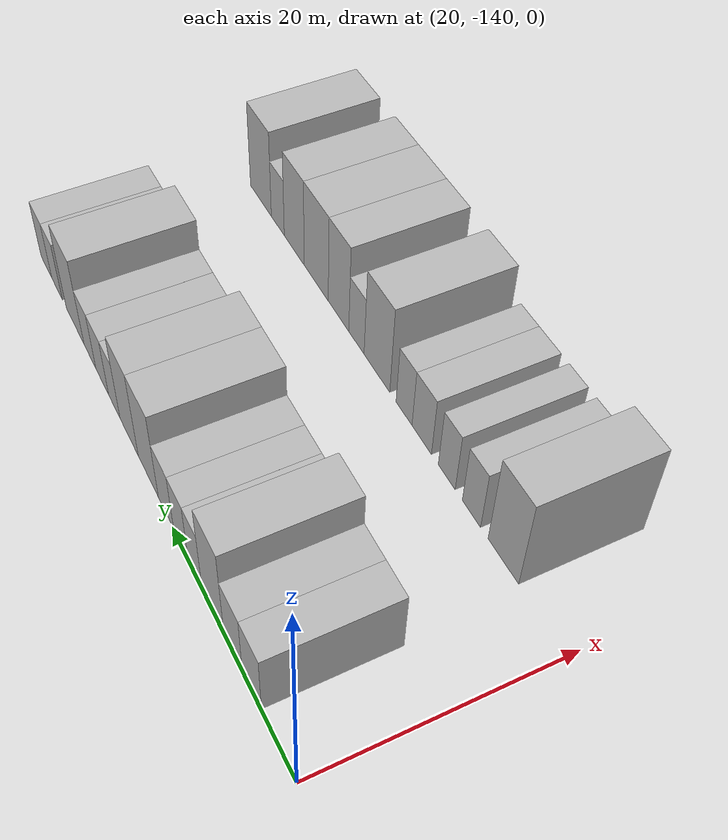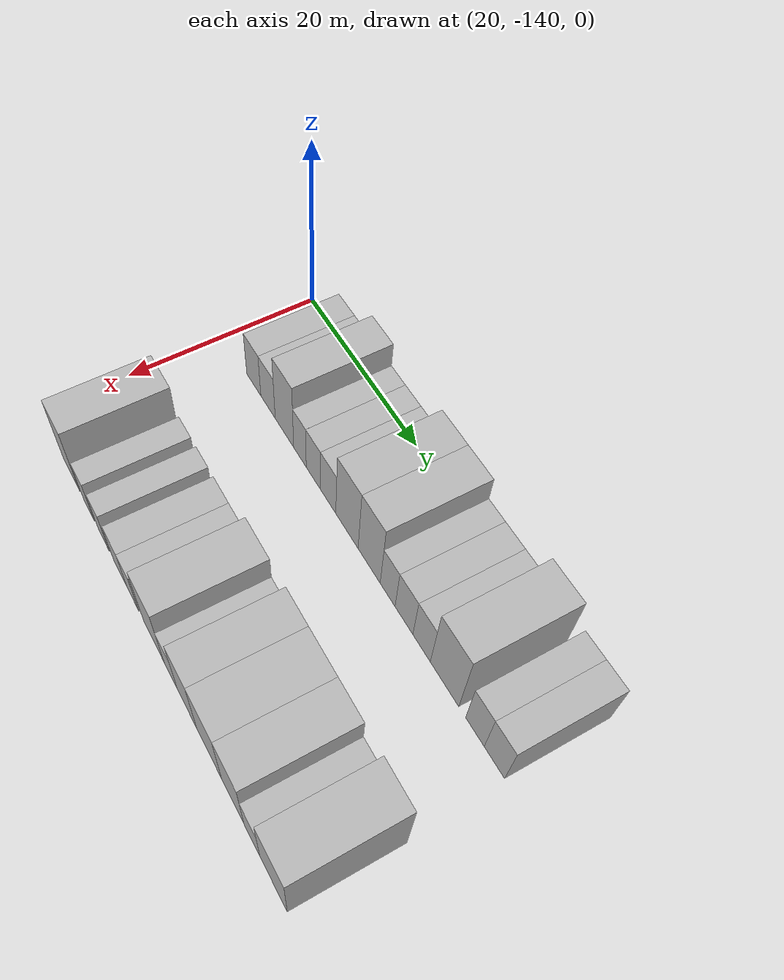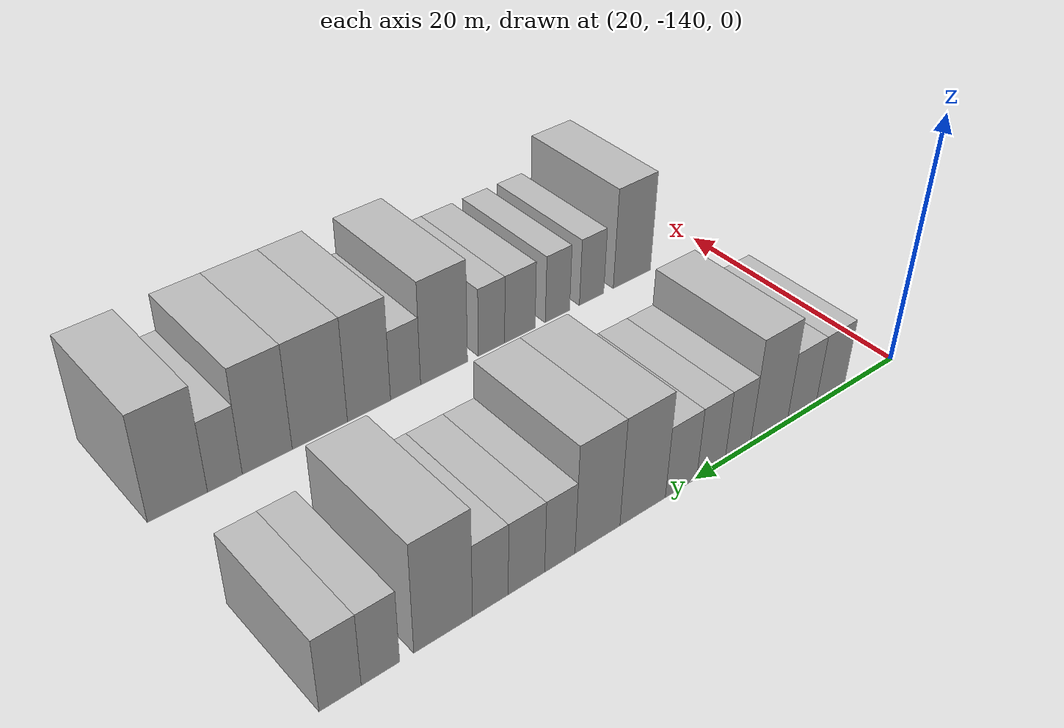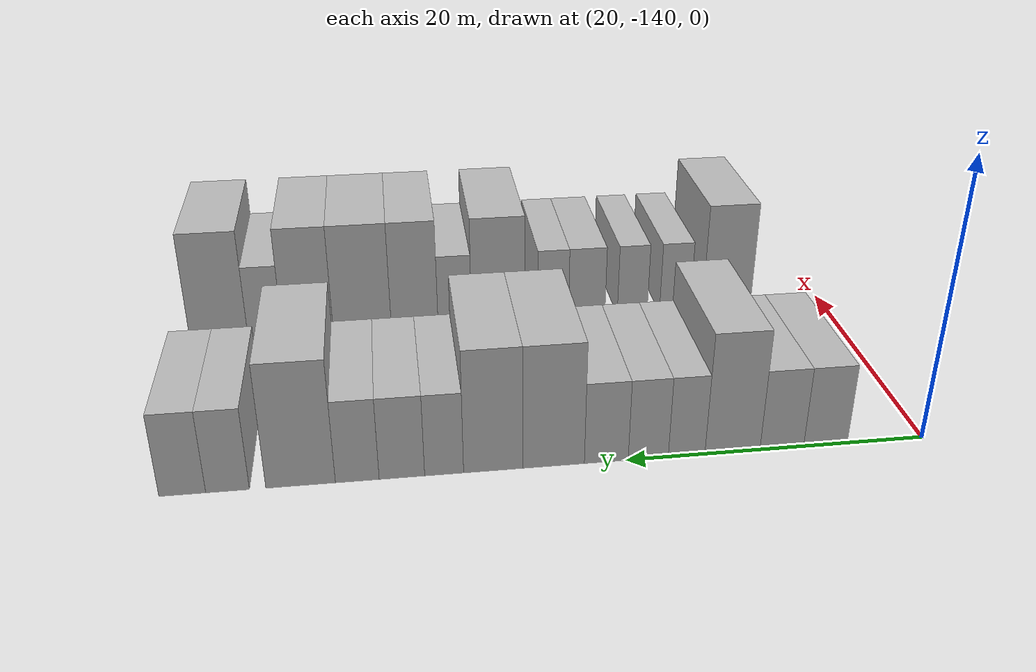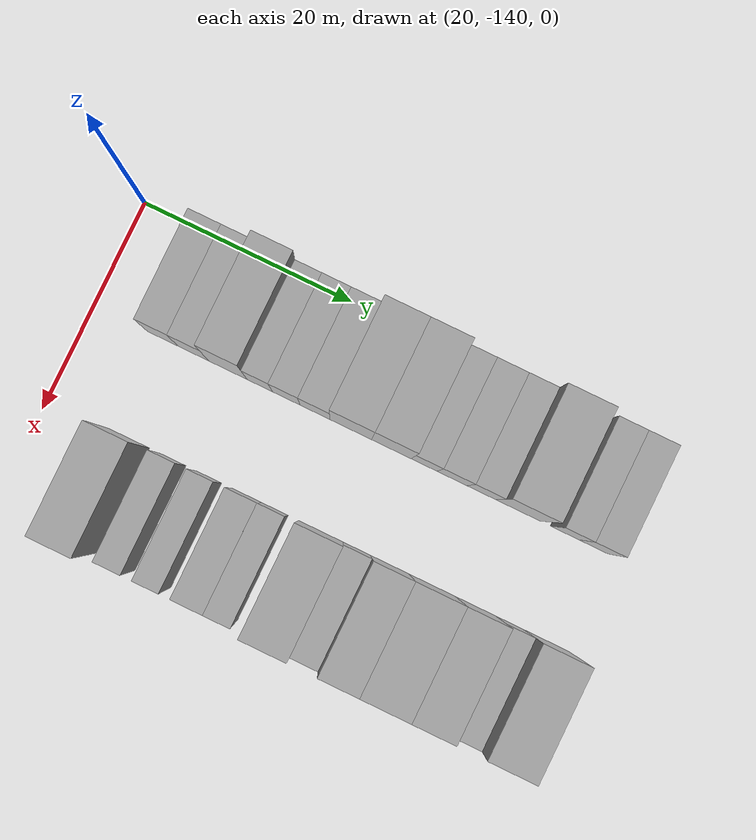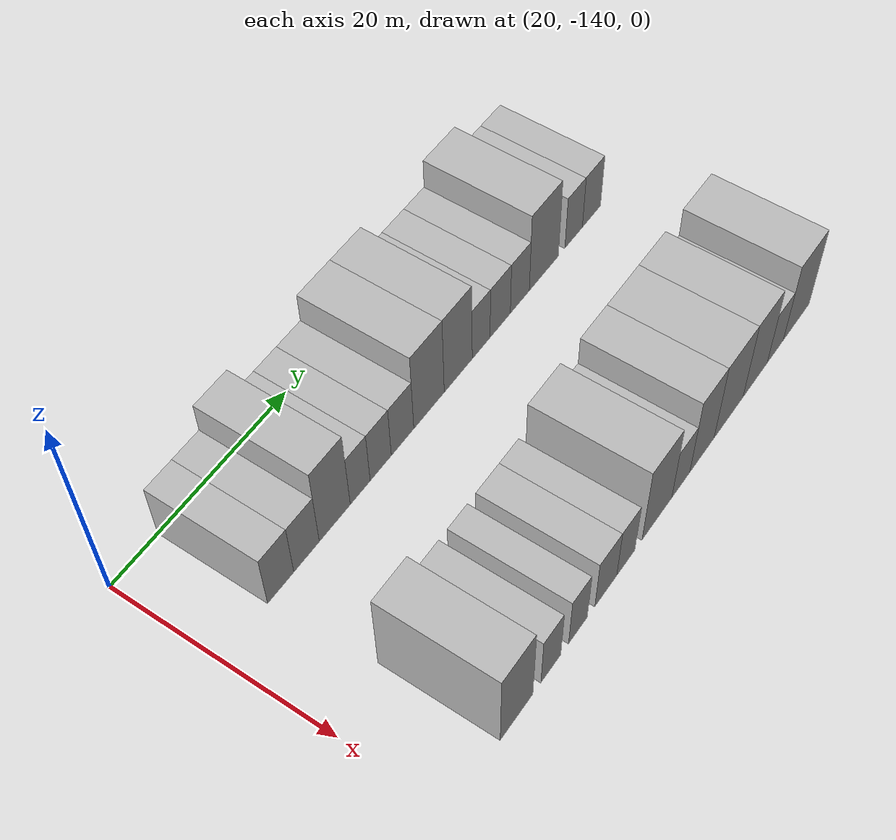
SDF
<sdf version="1.6">
 <world name="default">
  <model name="building_16">
   <static>1</static>
   <pose>25.0000 -133.3309 0 0.000000 0.000000 0.000000</pose>
   <link name="link">
    <pose>0 0 3.00 0 0 0</pose>
    <collision name="collision"><geometry><box><size>10.0000 2.9795 6.0000</size></box></geometry></collision>
    <visual name="visual">
     <cast_shadows>0</cast_shadows>
     <geometry><box><size>10.0000 2.9795 6.0000</size></box></geometry>
     <material>
      <script>
       <uri>model://HANNAS_wall/materials/scripts</uri>
       <uri>model://HANNAS_wall/materials/textures</uri>
       <name>vrc/HANNAS_wall</name>
      </script>
     </material>
    </visual>
   </link>
  </model>
  <model name="building_17">
   <static>1</static>
   <pose>25.0000 -130.3622 0 0.000000 0.000000 0.000000</pose>
   <link name="link">
    <pose>0 0 3.00 0 0 0</pose>
    <collision name="collision"><geometry><box><size>10.0000 2.9579 6.0000</size></box></geometry></collision>
    <visual name="visual">
     <cast_shadows>0</cast_shadows>
     <geometry><box><size>10.0000 2.9579 6.0000</size></box></geometry>
     <material>
      <script>
       <uri>model://HANNAS_wall/materials/scripts</uri>
       <uri>model://HANNAS_wall/materials/textures</uri>
       <name>vrc/HANNAS_wall</name>
      </script>
     </material>
    </visual>
   </link>
  </model>
  <model name="building_18">
   <static>1</static>
   <pose>25.0000 -127.0378 0 0.000000 0.000000 0.000000</pose>
   <link name="link">
    <pose>0 0 4.50 0 0 0</pose>
    <collision name="collision"><geometry><box><size>10.0000 3.6909 9.0000</size></box></geometry></collision>
    <visual name="visual">
     <cast_shadows>0</cast_shadows>
     <geometry><box><size>10.0000 3.6909 9.0000</size></box></geometry>
     <material>
      <script>
       <uri>model://HANNAS_wall/materials/scripts</uri>
       <uri>model://HANNAS_wall/materials/textures</uri>
       <name>vrc/HANNAS_wall</name>
      </script>
     </material>
    </visual>
   </link>
  </model>
  <model name="building_19">
   <static>1</static>
   <pose>25.0000 -123.9775 0 0.000000 0.000000 0.000000</pose>
   <link name="link">
    <pose>0 0 3.00 0 0 0</pose>
    <collision name="collision"><geometry><box><size>10.0000 2.4298 6.0000</size></box></geometry></collision>
    <visual name="visual">
     <cast_shadows>0</cast_shadows>
     <geometry><box><size>10.0000 2.4298 6.0000</size></box></geometry>
     <material>
      <script>
       <uri>model://HANNAS_wall/materials/scripts</uri>
       <uri>model://HANNAS_wall/materials/textures</uri>
       <name>vrc/HANNAS_wall</name>
      </script>
     </material>
    </visual>
   </link>
  </model>
  <model name="building_20">
   <static>1</static>
   <pose>25.0000 -121.4424 0 0.000000 0.000000 0.000000</pose>
   <link name="link">
    <pose>0 0 3.00 0 0 0</pose>
    <collision name="collision"><geometry><box><size>10.0000 2.6403 6.0000</size></box></geometry></collision>
    <visual name="visual">
     <cast_shadows>0</cast_shadows>
     <geometry><box><size>10.0000 2.6403 6.0000</size></box></geometry>
     <material>
      <script>
       <uri>model://HANNAS_wall/materials/scripts</uri>
       <uri>model://HANNAS_wall/materials/textures</uri>
       <name>vrc/HANNAS_wall</name>
      </script>
     </material>
    </visual>
   </link>
  </model>
  <model name="building_21">
   <static>1</static>
   <pose>25.0000 -118.6902 0 0.000000 0.000000 0.000000</pose>
   <link name="link">
    <pose>0 0 3.00 0 0 0</pose>
    <collision name="collision"><geometry><box><size>10.0000 2.8641 6.0000</size></box></geometry></collision>
    <visual name="visual">
     <cast_shadows>0</cast_shadows>
     <geometry><box><size>10.0000 2.8641 6.0000</size></box></geometry>
     <material>
      <script>
       <uri>model://HANNAS_wall/materials/scripts</uri>
       <uri>model://HANNAS_wall/materials/textures</uri>
       <name>vrc/HANNAS_wall</name>
      </script>
     </material>
    </visual>
   </link>
  </model>
  <model name="building_22">
   <static>1</static>
   <pose>25.0000 -115.2662 0 0.000000 0.000000 0.000000</pose>
   <link name="link">
    <pose>0 0 4.50 0 0 0</pose>
    <collision name="collision"><geometry><box><size>10.0000 3.9840 9.0000</size></box></geometry></collision>
    <visual name="visual">
     <cast_shadows>0</cast_shadows>
     <geometry><box><size>10.0000 3.9840 9.0000</size></box></geometry>
     <material>
      <script>
       <uri>model://HANNAS_wall/materials/scripts</uri>
       <uri>model://HANNAS_wall/materials/textures</uri>
       <name>vrc/HANNAS_wall</name>
      </script>
     </material>
    </visual>
   </link>
  </model>
  <model name="building_23">
   <static>1</static>
   <pose>25.0000 -111.3850 0 0.000000 0.000000 0.000000</pose>
   <link name="link">
    <pose>0 0 4.50 0 0 0</pose>
    <collision name="collision"><geometry><box><size>10.0000 3.7785 9.0000</size></box></geometry></collision>
    <visual name="visual">
     <cast_shadows>0</cast_shadows>
     <geometry><box><size>10.0000 3.7785 9.0000</size></box></geometry>
     <material>
      <script>
       <uri>model://HANNAS_wall/materials/scripts</uri>
       <uri>model://HANNAS_wall/materials/textures</uri>
       <name>vrc/HANNAS_wall</name>
      </script>
     </material>
    </visual>
   </link>
  </model>
  <model name="building_24">
   <static>1</static>
   <pose>25.0000 -108.2642 0 0.000000 0.000000 0.000000</pose>
   <link name="link">
    <pose>0 0 3.00 0 0 0</pose>
    <collision name="collision"><geometry><box><size>10.0000 2.4630 6.0000</size></box></geometry></collision>
    <visual name="visual">
     <cast_shadows>0</cast_shadows>
     <geometry><box><size>10.0000 2.4630 6.0000</size></box></geometry>
     <material>
      <script>
       <uri>model://HANNAS_wall/materials/scripts</uri>
       <uri>model://HANNAS_wall/materials/textures</uri>
       <name>vrc/HANNAS_wall</name>
      </script>
     </material>
    </visual>
   </link>
  </model>
  <model name="building_25">
   <static>1</static>
   <pose>25.0000 -105.6047 0 0.000000 0.000000 0.000000</pose>
   <link name="link">
    <pose>0 0 3.00 0 0 0</pose>
    <collision name="collision"><geometry><box><size>10.0000 2.8561 6.0000</size></box></geometry></collision>
    <visual name="visual">
     <cast_shadows>0</cast_shadows>
     <geometry><box><size>10.0000 2.8561 6.0000</size></box></geometry>
     <material>
      <script>
       <uri>model://HANNAS_wall/materials/scripts</uri>
       <uri>model://HANNAS_wall/materials/textures</uri>
       <name>vrc/HANNAS_wall</name>
      </script>
     </material>
    </visual>
   </link>
  </model>
  <model name="building_26">
   <static>1</static>
   <pose>25.0000 -102.8159 0 0.000000 0.000000 0.000000</pose>
   <link name="link">
    <pose>0 0 3.00 0 0 0</pose>
    <collision name="collision"><geometry><box><size>10.0000 2.7213 6.0000</size></box></geometry></collision>
    <visual name="visual">
     <cast_shadows>0</cast_shadows>
     <geometry><box><size>10.0000 2.7213 6.0000</size></box></geometry>
     <material>
      <script>
       <uri>model://HANNAS_wall/materials/scripts</uri>
       <uri>model://HANNAS_wall/materials/textures</uri>
       <name>vrc/HANNAS_wall</name>
      </script>
     </material>
    </visual>
   </link>
  </model>
  <model name="building_27">
   <static>1</static>
   <pose>25.0000 -99.3141 0 0.000000 0.000000 0.000000</pose>
   <link name="link">
    <pose>0 0 4.50 0 0 0</pose>
    <collision name="collision"><geometry><box><size>10.0000 4.2824 9.0000</size></box></geometry></collision>
    <visual name="visual">
     <cast_shadows>0</cast_shadows>
     <geometry><box><size>10.0000 4.2824 9.0000</size></box></geometry>
     <material>
      <script>
       <uri>model://HANNAS_wall/materials/scripts</uri>
       <uri>model://HANNAS_wall/materials/textures</uri>
       <name>vrc/HANNAS_wall</name>
      </script>
     </material>
    </visual>
   </link>
  </model>
  <model name="building_28">
   <static>1</static>
   <pose>25.0000 -94.8458 0 0.000000 0.000000 0.000000</pose>
   <link name="link">
    <pose>0 0 3.00 0 0 0</pose>
    <collision name="collision"><geometry><box><size>10.0000 2.6542 6.0000</size></box></geometry></collision>
    <visual name="visual">
     <cast_shadows>0</cast_shadows>
     <geometry><box><size>10.0000 2.6542 6.0000</size></box></geometry>
     <material>
      <script>
       <uri>model://HANNAS_wall/materials/scripts</uri>
       <uri>model://HANNAS_wall/materials/textures</uri>
       <name>vrc/HANNAS_wall</name>
      </script>
     </material>
    </visual>
   </link>
  </model>
  <model name="building_29">
   <static>1</static>
   <pose>25.0000 -92.1096 0 0.000000 0.000000 0.000000</pose>
   <link name="link">
    <pose>0 0 3.00 0 0 0</pose>
    <collision name="collision"><geometry><box><size>10.0000 2.8182 6.0000</size></box></geometry></collision>
    <visual name="visual">
     <cast_shadows>0</cast_shadows>
     <geometry><box><size>10.0000 2.8182 6.0000</size></box></geometry>
     <material>
      <script>
       <uri>model://HANNAS_wall/materials/scripts</uri>
       <uri>model://HANNAS_wall/materials/textures</uri>
       <name>vrc/HANNAS_wall</name>
      </script>
     </material>
    </visual>
   </link>
  </model>
  <model name="building_117">
   <static>1</static>
   <pose>44.0000 -132.1596 0 0.000000 0.000000 0.000000</pose>
   <link name="link">
    <pose>0 0 4.50 0 0 0</pose>
    <collision name="collision"><geometry><box><size>10.0000 3.9571 9.0000</size></box></geometry></collision>
    <visual name="visual">
     <cast_shadows>0</cast_shadows>
     <geometry><box><size>10.0000 3.9571 9.0000</size></box></geometry>
     <material>
      <script>
       <uri>model://HANNAS_wall/materials/scripts</uri>
       <uri>model://HANNAS_wall/materials/textures</uri>
       <name>vrc/HANNAS_wall</name>
      </script>
     </material>
    </visual>
   </link>
  </model>
  <model name="building_118">
   <static>1</static>
   <pose>44.0000 -127.9338 0 0.000000 0.000000 0.000000</pose>
   <link name="link">
    <pose>0 0 3.00 0 0 0</pose>
    <collision name="collision"><geometry><box><size>10.0000 2.4944 6.0000</size></box></geometry></collision>
    <visual name="visual">
     <cast_shadows>0</cast_shadows>
     <geometry><box><size>10.0000 2.4944 6.0000</size></box></geometry>
     <material>
      <script>
       <uri>model://HANNAS_wall/materials/scripts</uri>
       <uri>model://HANNAS_wall/materials/textures</uri>
       <name>vrc/HANNAS_wall</name>
      </script>
     </material>
    </visual>
   </link>
  </model>
  <model name="building_119">
   <static>1</static>
   <pose>44.0000 -124.4778 0 0.000000 0.000000 0.000000</pose>
   <link name="link">
    <pose>0 0 3.00 0 0 0</pose>
    <collision name="collision"><geometry><box><size>10.0000 2.4176 6.0000</size></box></geometry></collision>
    <visual name="visual">
     <cast_shadows>0</cast_shadows>
     <geometry><box><size>10.0000 2.4176 6.0000</size></box></geometry>
     <material>
      <script>
       <uri>model://HANNAS_wall/materials/scripts</uri>
       <uri>model://HANNAS_wall/materials/textures</uri>
       <name>vrc/HANNAS_wall</name>
      </script>
     </material>
    </visual>
   </link>
  </model>
  <model name="building_120">
   <static>1</static>
   <pose>44.0000 -120.8111 0 0.000000 0.000000 0.000000</pose>
   <link name="link">
    <pose>0 0 3.00 0 0 0</pose>
    <collision name="collision"><geometry><box><size>10.0000 2.9159 6.0000</size></box></geometry></collision>
    <visual name="visual">
     <cast_shadows>0</cast_shadows>
     <geometry><box><size>10.0000 2.9159 6.0000</size></box></geometry>
     <material>
      <script>
       <uri>model://HANNAS_wall/materials/scripts</uri>
       <uri>model://HANNAS_wall/materials/textures</uri>
       <name>vrc/HANNAS_wall</name>
      </script>
     </material>
    </visual>
   </link>
  </model>
  <model name="building_121">
   <static>1</static>
   <pose>44.0000 -118.1177 0 0.000000 0.000000 0.000000</pose>
   <link name="link">
    <pose>0 0 3.00 0 0 0</pose>
    <collision name="collision"><geometry><box><size>10.0000 2.4707 6.0000</size></box></geometry></collision>
    <visual name="visual">
     <cast_shadows>0</cast_shadows>
     <geometry><box><size>10.0000 2.4707 6.0000</size></box></geometry>
     <material>
      <script>
       <uri>model://HANNAS_wall/materials/scripts</uri>
       <uri>model://HANNAS_wall/materials/textures</uri>
       <name>vrc/HANNAS_wall</name>
      </script>
     </material>
    </visual>
   </link>
  </model>
  <model name="building_122">
   <static>1</static>
   <pose>44.0000 -113.7785 0 0.000000 0.000000 0.000000</pose>
   <link name="link">
    <pose>0 0 4.50 0 0 0</pose>
    <collision name="collision"><geometry><box><size>10.0000 4.2076 9.0000</size></box></geometry></collision>
    <visual name="visual">
     <cast_shadows>0</cast_shadows>
     <geometry><box><size>10.0000 4.2076 9.0000</size></box></geometry>
     <material>
      <script>
       <uri>model://HANNAS_wall/materials/scripts</uri>
       <uri>model://HANNAS_wall/materials/textures</uri>
       <name>vrc/HANNAS_wall</name>
      </script>
     </material>
    </visual>
   </link>
  </model>
  <model name="building_123">
   <static>1</static>
   <pose>44.0000 -110.3698 0 0.000000 0.000000 0.000000</pose>
   <link name="link">
    <pose>0 0 3.00 0 0 0</pose>
    <collision name="collision"><geometry><box><size>10.0000 2.6098 6.0000</size></box></geometry></collision>
    <visual name="visual">
     <cast_shadows>0</cast_shadows>
     <geometry><box><size>10.0000 2.6098 6.0000</size></box></geometry>
     <material>
      <script>
       <uri>model://HANNAS_wall/materials/scripts</uri>
       <uri>model://HANNAS_wall/materials/textures</uri>
       <name>vrc/HANNAS_wall</name>
      </script>
     </material>
    </visual>
   </link>
  </model>
  <model name="building_124">
   <static>1</static>
   <pose>44.0000 -107.2517 0 0.000000 0.000000 0.000000</pose>
   <link name="link">
    <pose>0 0 4.50 0 0 0</pose>
    <collision name="collision"><geometry><box><size>10.0000 3.6264 9.0000</size></box></geometry></collision>
    <visual name="visual">
     <cast_shadows>0</cast_shadows>
     <geometry><box><size>10.0000 3.6264 9.0000</size></box></geometry>
     <material>
      <script>
       <uri>model://HANNAS_wall/materials/scripts</uri>
       <uri>model://HANNAS_wall/materials/textures</uri>
       <name>vrc/HANNAS_wall</name>
      </script>
     </material>
    </visual>
   </link>
  </model>
  <model name="building_125">
   <static>1</static>
   <pose>44.0000 -103.2124 0 0.000000 0.000000 0.000000</pose>
   <link name="link">
    <pose>0 0 4.50 0 0 0</pose>
    <collision name="collision"><geometry><box><size>10.0000 4.4522 9.0000</size></box></geometry></collision>
    <visual name="visual">
     <cast_shadows>0</cast_shadows>
     <geometry><box><size>10.0000 4.4522 9.0000</size></box></geometry>
     <material>
      <script>
       <uri>model://HANNAS_wall/materials/scripts</uri>
       <uri>model://HANNAS_wall/materials/textures</uri>
       <name>vrc/HANNAS_wall</name>
      </script>
     </material>
    </visual>
   </link>
  </model>
  <model name="building_126">
   <static>1</static>
   <pose>44.0000 -99.0583 0 0.000000 0.000000 0.000000</pose>
   <link name="link">
    <pose>0 0 4.50 0 0 0</pose>
    <collision name="collision"><geometry><box><size>10.0000 3.8561 9.0000</size></box></geometry></collision>
    <visual name="visual">
     <cast_shadows>0</cast_shadows>
     <geometry><box><size>10.0000 3.8561 9.0000</size></box></geometry>
     <material>
      <script>
       <uri>model://HANNAS_wall/materials/scripts</uri>
       <uri>model://HANNAS_wall/materials/textures</uri>
       <name>vrc/HANNAS_wall</name>
      </script>
     </material>
    </visual>
   </link>
  </model>
  <model name="building_127">
   <static>1</static>
   <pose>44.0000 -95.8284 0 0.000000 0.000000 0.000000</pose>
   <link name="link">
    <pose>0 0 3.00 0 0 0</pose>
    <collision name="collision"><geometry><box><size>10.0000 2.6038 6.0000</size></box></geometry></collision>
    <visual name="visual">
     <cast_shadows>0</cast_shadows>
     <geometry><box><size>10.0000 2.6038 6.0000</size></box></geometry>
     <material>
      <script>
       <uri>model://HANNAS_wall/materials/scripts</uri>
       <uri>model://HANNAS_wall/materials/textures</uri>
       <name>vrc/HANNAS_wall</name>
      </script>
     </material>
    </visual>
   </link>
  </model>
  <model name="building_128">
   <static>1</static>
   <pose>44.0000 -92.3631 0 0.000000 0.000000 0.000000</pose>
   <link name="link">
    <pose>0 0 4.50 0 0 0</pose>
    <collision name="collision"><geometry><box><size>10.0000 4.3267 9.0000</size></box></geometry></collision>
    <visual name="visual">
     <cast_shadows>0</cast_shadows>
     <geometry><box><size>10.0000 4.3267 9.0000</size></box></geometry>
     <material>
      <script>
       <uri>model://HANNAS_wall/materials/scripts</uri>
       <uri>model://HANNAS_wall/materials/textures</uri>
       <name>vrc/HANNAS_wall</name>
      </script>
     </material>
    </visual>
   </link>
  </model>
 </world>
</sdf>
